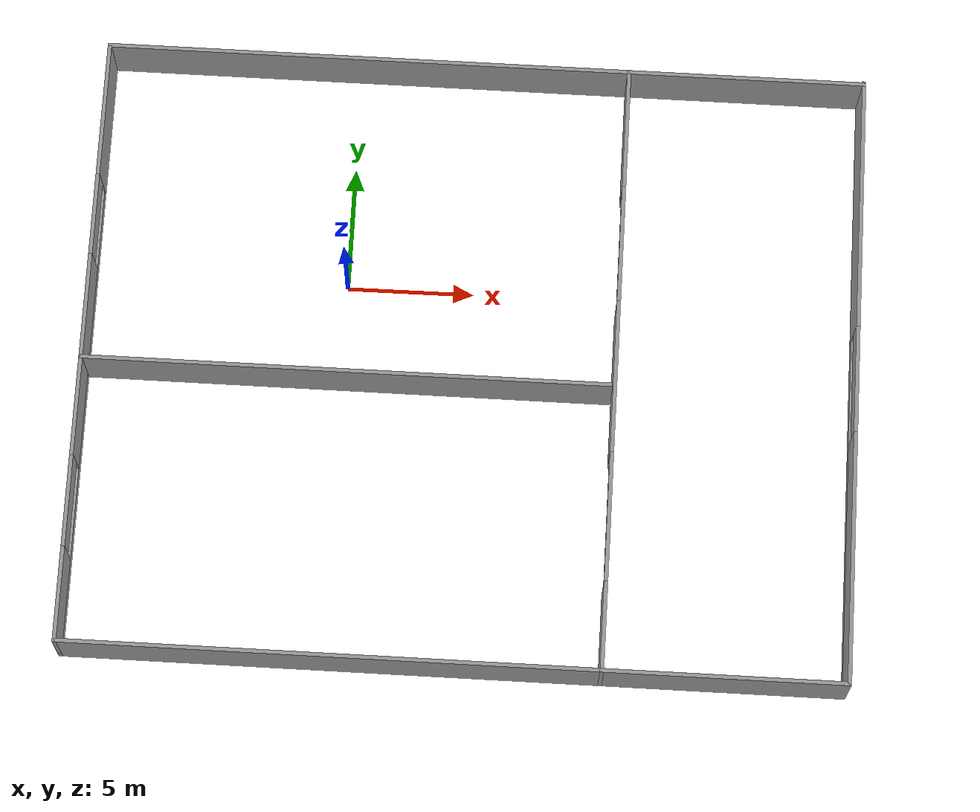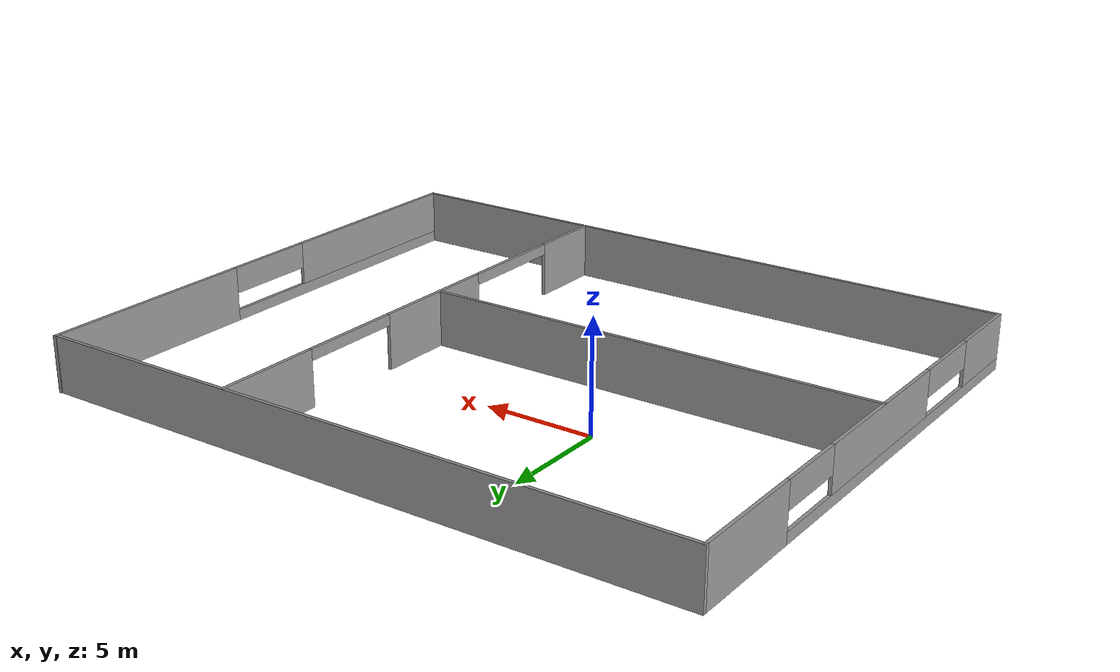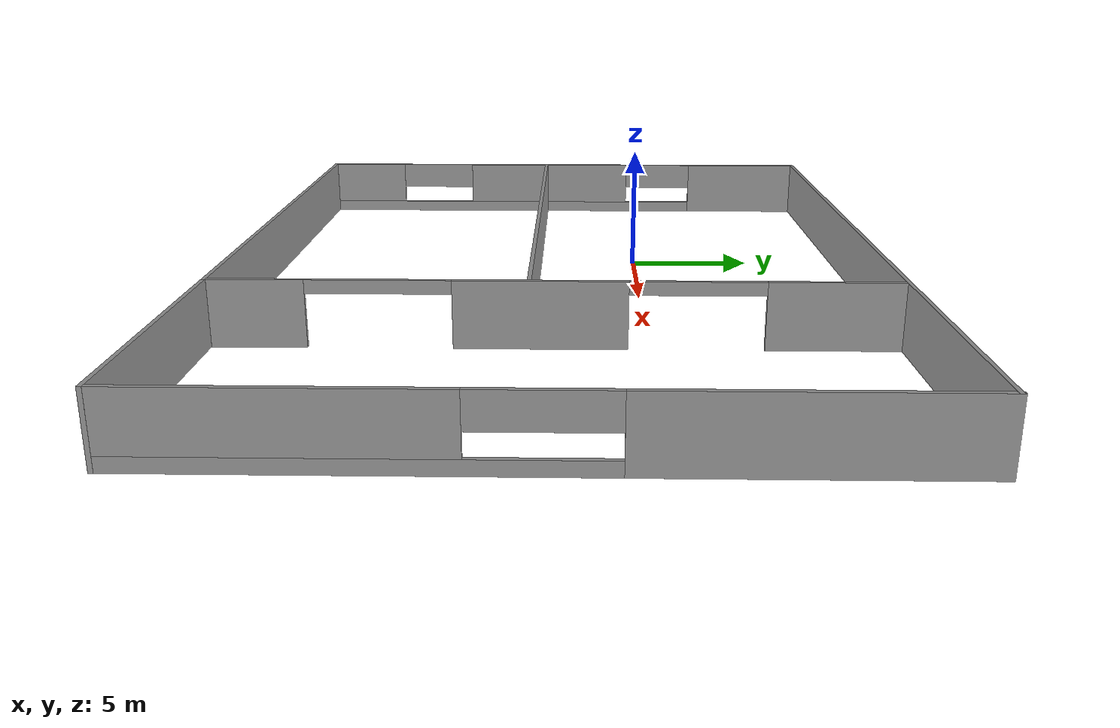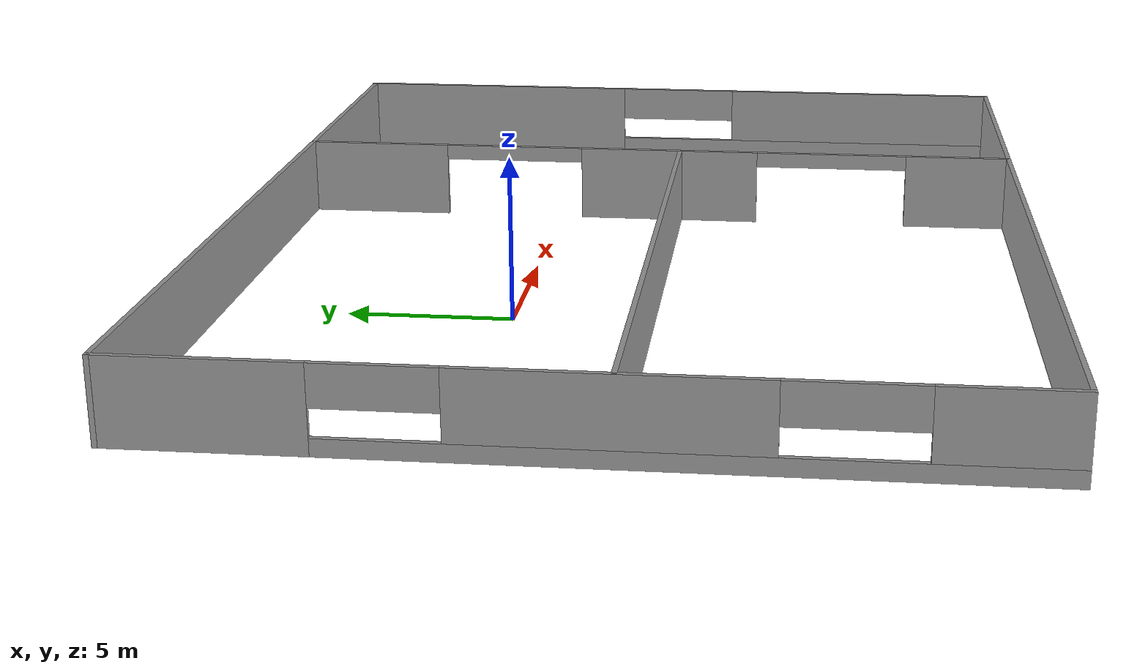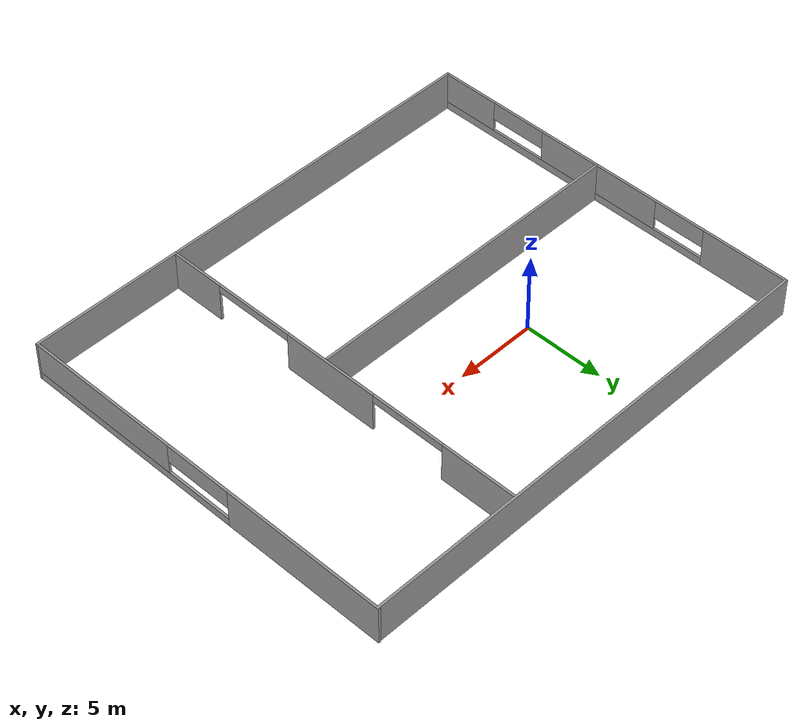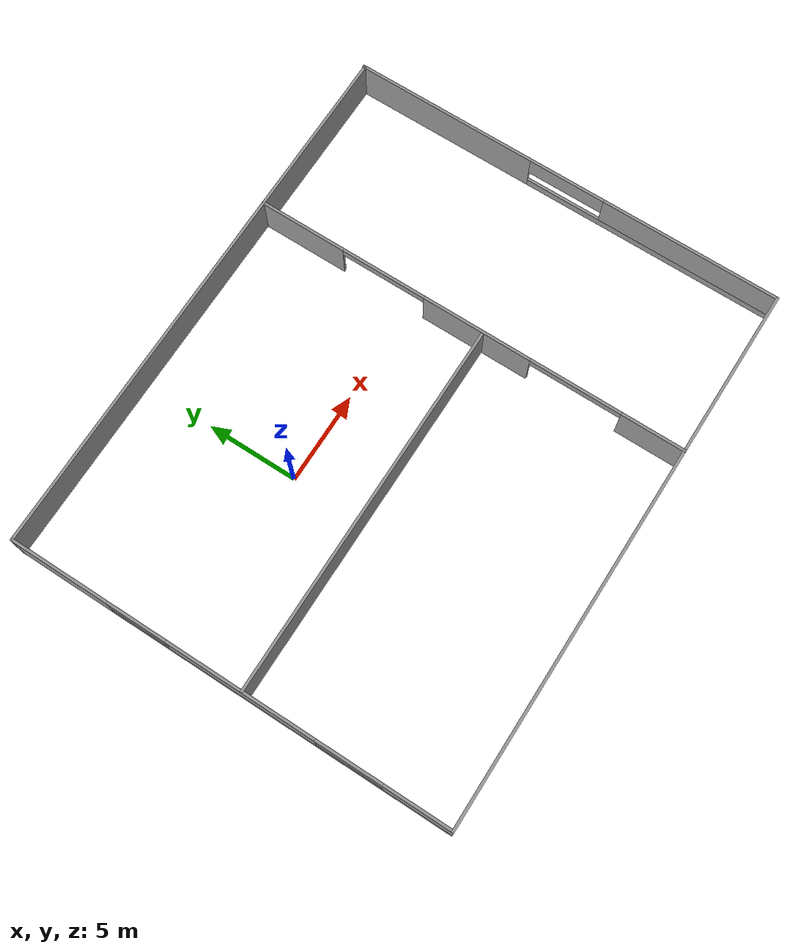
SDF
<?xml version='1.0'?>
<sdf version='1.7'>
  <model name='2house'>
    <pose>4.9971 -3.26299 0 0 -0 0</pose>
    <link name='Wall_38'>
      <pose>-15.077 -0.020228 0 0 -0 -1.5708</pose>
      <visual name='Wall_38_Visual_0'>
        <pose>-9.47045 0 1.25 0 -0 0</pose>
        <geometry>
          <box>
            <size>5.5591 0.15 2.5</size>
          </box>
        </geometry>
        <material>
          <script>
            <uri>file://media/materials/scripts/gazebo.material</uri>
            <name>Gazebo/Grey</name>
          </script>
          <ambient>1 1 1 1</ambient>
        </material>
        <meta>
          <layer>0</layer>
        </meta>
      </visual>
      <collision name='Wall_38_Collision_0'>
        <geometry>
          <box>
            <size>5.5591 0.15 2.5</size>
          </box>
        </geometry>
        <pose>-9.47045 0 1.25 0 -0 0</pose>
      </collision>
      <visual name='Wall_38_Visual_1'>
        <pose>2.77955 0 0.25 0 -0 0</pose>
        <geometry>
          <box>
            <size>18.9409 0.15 0.5</size>
          </box>
        </geometry>
        <material>
          <script>
            <uri>file://media/materials/scripts/gazebo.material</uri>
            <name>Gazebo/Grey</name>
          </script>
          <ambient>1 1 1 1</ambient>
        </material>
        <meta>
          <layer>0</layer>
        </meta>
      </visual>
      <collision name='Wall_38_Collision_1'>
        <geometry>
          <box>
            <size>18.9409 0.15 0.5</size>
          </box>
        </geometry>
        <pose>2.77955 0 0.25 0 -0 0</pose>
      </collision>
      <visual name='Wall_38_Visual_2'>
        <pose>0.751253 0 1.5 0 -0 0</pose>
        <geometry>
          <box>
            <size>8.22439 0.15 2</size>
          </box>
        </geometry>
        <material>
          <script>
            <uri>file://media/materials/scripts/gazebo.material</uri>
            <name>Gazebo/Grey</name>
          </script>
          <ambient>1 1 1 1</ambient>
        </material>
        <meta>
          <layer>0</layer>
        </meta>
      </visual>
      <collision name='Wall_38_Collision_2'>
        <geometry>
          <box>
            <size>8.22439 0.15 2</size>
          </box>
        </geometry>
        <pose>0.751253 0 1.5 0 -0 0</pose>
      </collision>
      <visual name='Wall_38_Visual_3'>
        <pose>10.3719 0 1.5 0 -0 0</pose>
        <geometry>
          <box>
            <size>3.75627 0.15 2</size>
          </box>
        </geometry>
        <material>
          <script>
            <uri>file://media/materials/scripts/gazebo.material</uri>
            <name>Gazebo/Grey</name>
          </script>
          <ambient>1 1 1 1</ambient>
        </material>
        <meta>
          <layer>0</layer>
        </meta>
      </visual>
      <collision name='Wall_38_Collision_3'>
        <geometry>
          <box>
            <size>3.75627 0.15 2</size>
          </box>
        </geometry>
        <pose>10.3719 0 1.5 0 -0 0</pose>
      </collision>
      <visual name='Wall_38_Visual_4'>
        <pose>-5.02592 0 1.9 0 -0 0</pose>
        <geometry>
          <box>
            <size>3.32996 0.15 1.2</size>
          </box>
        </geometry>
        <material>
          <script>
            <uri>file://media/materials/scripts/gazebo.material</uri>
            <name>Gazebo/Grey</name>
          </script>
          <ambient>1 1 1 1</ambient>
        </material>
        <meta>
          <layer>0</layer>
        </meta>
      </visual>
      <collision name='Wall_38_Collision_4'>
        <geometry>
          <box>
            <size>3.32996 0.15 1.2</size>
          </box>
        </geometry>
        <pose>-5.02592 0 1.9 0 -0 0</pose>
      </collision>
      <visual name='Wall_38_Visual_5'>
        <pose>6.67859 0 1.9 0 -0 0</pose>
        <geometry>
          <box>
            <size>3.63028 0.15 1.2</size>
          </box>
        </geometry>
        <material>
          <script>
            <uri>file://media/materials/scripts/gazebo.material</uri>
            <name>Gazebo/Grey</name>
          </script>
          <ambient>1 1 1 1</ambient>
        </material>
        <meta>
          <layer>0</layer>
        </meta>
      </visual>
      <collision name='Wall_38_Collision_5'>
        <geometry>
          <box>
            <size>3.63028 0.15 1.2</size>
          </box>
        </geometry>
        <pose>6.67859 0 1.9 0 -0 0</pose>
      </collision>
    </link>
    <link name='Wall_39'>
      <collision name='Wall_39_Collision'>
        <geometry>
          <box>
            <size>20.9372 0.15 2.5</size>
          </box>
        </geometry>
        <pose>0 0 1.25 0 -0 0</pose>
      </collision>
      <visual name='Wall_39_Visual'>
        <pose>0 0 1.25 0 -0 0</pose>
        <geometry>
          <box>
            <size>20.9372 0.15 2.5</size>
          </box>
        </geometry>
        <material>
          <script>
            <uri>file://media/materials/scripts/gazebo.material</uri>
            <name>Gazebo/Grey</name>
          </script>
          <ambient>1 1 1 1</ambient>
        </material>
        <meta>
          <layer>0</layer>
        </meta>
      </visual>
      <pose>-4.68336 -12.1952 0 0 -0 0</pose>
    </link>
    <link name='Wall_40'>
      <pose>5.71026 -0.020228 0 0 -0 1.5708</pose>
      <visual name='Wall_40_Visual_0'>
        <pose>-10.4734 0 1.25 0 -0 0</pose>
        <geometry>
          <box>
            <size>3.5532 0.15 2.5</size>
          </box>
        </geometry>
        <material>
          <script>
            <uri>file://media/materials/scripts/gazebo.material</uri>
            <name>Gazebo/Grey</name>
          </script>
          <ambient>1 1 1 1</ambient>
        </material>
        <meta>
          <layer>0</layer>
        </meta>
      </visual>
      <collision name='Wall_40_Collision_0'>
        <geometry>
          <box>
            <size>3.5532 0.15 2.5</size>
          </box>
        </geometry>
        <pose>-10.4734 0 1.25 0 -0 0</pose>
      </collision>
      <visual name='Wall_40_Visual_1'>
        <pose>-0.502827 0 1.25 0 -0 0</pose>
        <geometry>
          <box>
            <size>6.13455 0.15 2.5</size>
          </box>
        </geometry>
        <material>
          <script>
            <uri>file://media/materials/scripts/gazebo.material</uri>
            <name>Gazebo/Grey</name>
          </script>
          <ambient>1 1 1 1</ambient>
        </material>
        <meta>
          <layer>0</layer>
        </meta>
      </visual>
      <collision name='Wall_40_Collision_1'>
        <geometry>
          <box>
            <size>6.13455 0.15 2.5</size>
          </box>
        </geometry>
        <pose>-0.502827 0 1.25 0 -0 0</pose>
      </collision>
      <visual name='Wall_40_Visual_2'>
        <pose>9.79206 0 1.25 0 -0 0</pose>
        <geometry>
          <box>
            <size>4.91589 0.15 2.5</size>
          </box>
        </geometry>
        <material>
          <script>
            <uri>file://media/materials/scripts/gazebo.material</uri>
            <name>Gazebo/Grey</name>
          </script>
          <ambient>1 1 1 1</ambient>
        </material>
        <meta>
          <layer>0</layer>
        </meta>
      </visual>
      <collision name='Wall_40_Collision_2'>
        <geometry>
          <box>
            <size>4.91589 0.15 2.5</size>
          </box>
        </geometry>
        <pose>9.79206 0 1.25 0 -0 0</pose>
      </collision>
      <visual name='Wall_40_Visual_3'>
        <pose>-6.13345 0 2.25 0 -0 0</pose>
        <geometry>
          <box>
            <size>5.1267 0.15 0.5</size>
          </box>
        </geometry>
        <material>
          <script>
            <uri>file://media/materials/scripts/gazebo.material</uri>
            <name>Gazebo/Grey</name>
          </script>
          <ambient>1 1 1 1</ambient>
        </material>
        <meta>
          <layer>0</layer>
        </meta>
      </visual>
      <collision name='Wall_40_Collision_3'>
        <geometry>
          <box>
            <size>5.1267 0.15 0.5</size>
          </box>
        </geometry>
        <pose>-6.13345 0 2.25 0 -0 0</pose>
      </collision>
      <visual name='Wall_40_Visual_4'>
        <pose>4.94928 0 2.25 0 -0 0</pose>
        <geometry>
          <box>
            <size>4.76966 0.15 0.5</size>
          </box>
        </geometry>
        <material>
          <script>
            <uri>file://media/materials/scripts/gazebo.material</uri>
            <name>Gazebo/Grey</name>
          </script>
          <ambient>1 1 1 1</ambient>
        </material>
        <meta>
          <layer>0</layer>
        </meta>
      </visual>
      <collision name='Wall_40_Collision_4'>
        <geometry>
          <box>
            <size>4.76966 0.15 0.5</size>
          </box>
        </geometry>
        <pose>4.94928 0 2.25 0 -0 0</pose>
      </collision>
    </link>
    <link name='Wall_42'>
      <collision name='Wall_42_Collision'>
        <geometry>
          <box>
            <size>30.3038 0.15 2.5</size>
          </box>
        </geometry>
        <pose>0 0 1.25 0 -0 0</pose>
      </collision>
      <visual name='Wall_42_Visual'>
        <pose>0 0 1.25 0 -0 0</pose>
        <geometry>
          <box>
            <size>30.3038 0.15 2.5</size>
          </box>
        </geometry>
        <material>
          <script>
            <uri>file://media/materials/scripts/gazebo.material</uri>
            <name>Gazebo/Grey</name>
          </script>
          <ambient>1 1 1 1</ambient>
        </material>
        <meta>
          <layer>0</layer>
        </meta>
      </visual>
      <pose>-8.7e-05 12.1548 0 0 -0 0</pose>
    </link>
    <link name='Wall_43'>
      <pose>15.0768 0.020228 0 0 -0 -1.5708</pose>
      <visual name='Wall_43_Visual_0'>
        <pose>-7.12804 0 1.25 0 -0 0</pose>
        <geometry>
          <box>
            <size>10.2439 0.15 2.5</size>
          </box>
        </geometry>
        <material>
          <script>
            <uri>file://media/materials/scripts/gazebo.material</uri>
            <name>Gazebo/Grey</name>
          </script>
          <ambient>1 1 1 1</ambient>
        </material>
        <meta>
          <layer>0</layer>
        </meta>
      </visual>
      <collision name='Wall_43_Collision_0'>
        <geometry>
          <box>
            <size>10.2439 0.15 2.5</size>
          </box>
        </geometry>
        <pose>-7.12804 0 1.25 0 -0 0</pose>
      </collision>
      <visual name='Wall_43_Visual_1'>
        <pose>5.12196 0 0.25 0 -0 0</pose>
        <geometry>
          <box>
            <size>14.2561 0.15 0.5</size>
          </box>
        </geometry>
        <material>
          <script>
            <uri>file://media/materials/scripts/gazebo.material</uri>
            <name>Gazebo/Grey</name>
          </script>
          <ambient>1 1 1 1</ambient>
        </material>
        <meta>
          <layer>0</layer>
        </meta>
      </visual>
      <collision name='Wall_43_Collision_1'>
        <geometry>
          <box>
            <size>14.2561 0.15 0.5</size>
          </box>
        </geometry>
        <pose>5.12196 0 0.25 0 -0 0</pose>
      </collision>
      <visual name='Wall_43_Visual_2'>
        <pose>7.27143 0 1.5 0 -0 0</pose>
        <geometry>
          <box>
            <size>9.95715 0.15 2</size>
          </box>
        </geometry>
        <material>
          <script>
            <uri>file://media/materials/scripts/gazebo.material</uri>
            <name>Gazebo/Grey</name>
          </script>
          <ambient>1 1 1 1</ambient>
        </material>
        <meta>
          <layer>0</layer>
        </meta>
      </visual>
      <collision name='Wall_43_Collision_2'>
        <geometry>
          <box>
            <size>9.95715 0.15 2</size>
          </box>
        </geometry>
        <pose>7.27143 0 1.5 0 -0 0</pose>
      </collision>
      <visual name='Wall_43_Visual_3'>
        <pose>0.143383 0 1.9 0 -0 0</pose>
        <geometry>
          <box>
            <size>4.29894 0.15 1.2</size>
          </box>
        </geometry>
        <material>
          <script>
            <uri>file://media/materials/scripts/gazebo.material</uri>
            <name>Gazebo/Grey</name>
          </script>
          <ambient>1 1 1 1</ambient>
        </material>
        <meta>
          <layer>0</layer>
        </meta>
      </visual>
      <collision name='Wall_43_Collision_3'>
        <geometry>
          <box>
            <size>4.29894 0.15 1.2</size>
          </box>
        </geometry>
        <pose>0.143383 0 1.9 0 -0 0</pose>
      </collision>
    </link>
    <link name='Wall_44'>
      <collision name='Wall_44_Collision'>
        <geometry>
          <box>
            <size>9.5169 0.15 2.5</size>
          </box>
        </geometry>
        <pose>0 0 1.25 0 -0 0</pose>
      </collision>
      <visual name='Wall_44_Visual'>
        <pose>0 0 1.25 0 -0 0</pose>
        <geometry>
          <box>
            <size>9.5169 0.15 2.5</size>
          </box>
        </geometry>
        <material>
          <script>
            <uri>file://media/materials/scripts/gazebo.material</uri>
            <name>Gazebo/Grey</name>
          </script>
          <ambient>1 1 1 1</ambient>
        </material>
        <meta>
          <layer>0</layer>
        </meta>
      </visual>
      <pose>10.3935 -12.1952 0 0 -0 3.14159</pose>
    </link>
    <link name='Wall_47'>
      <collision name='Wall_47_Collision'>
        <geometry>
          <box>
            <size>20.75 0.15 2.5</size>
          </box>
        </geometry>
        <pose>0 0 1.25 0 -0 0</pose>
      </collision>
      <visual name='Wall_47_Visual'>
        <pose>0 0 1.25 0 -0 0</pose>
        <geometry>
          <box>
            <size>20.75 0.15 2.5</size>
          </box>
        </geometry>
        <material>
          <script>
            <uri>file://media/materials/scripts/gazebo.material</uri>
            <name>Gazebo/Grey</name>
          </script>
          <ambient>1 1 1 1</ambient>
        </material>
        <meta>
          <layer>0</layer>
        </meta>
      </visual>
      <pose>-4.75766 -0.907078 0 0 -0 0</pose>
    </link>
    <static>1</static>
  </model>
</sdf>
